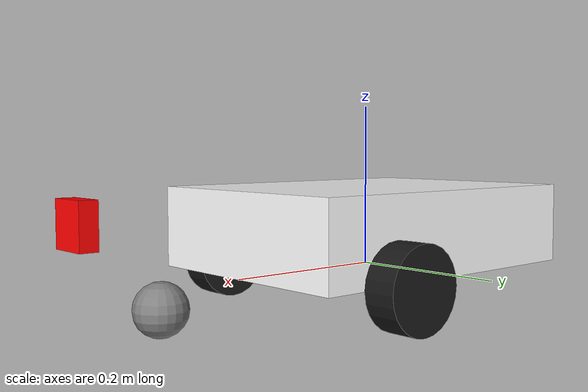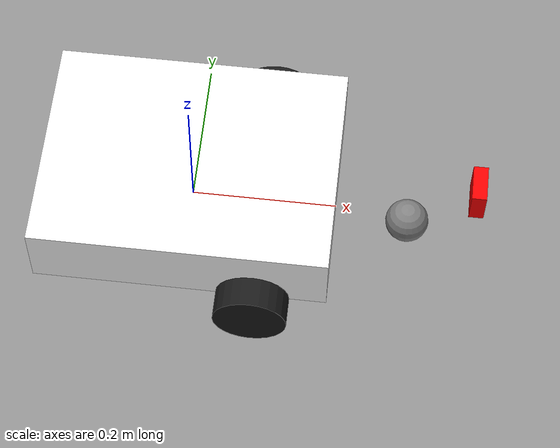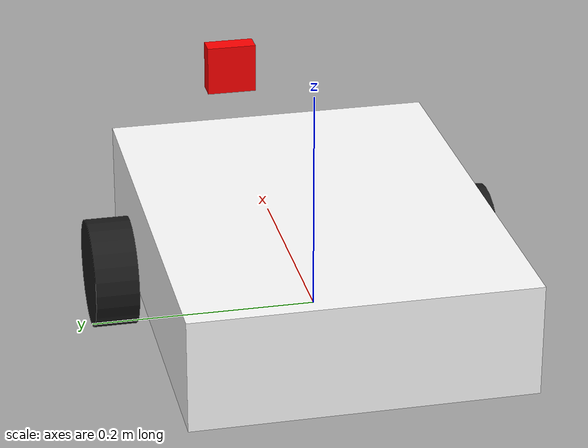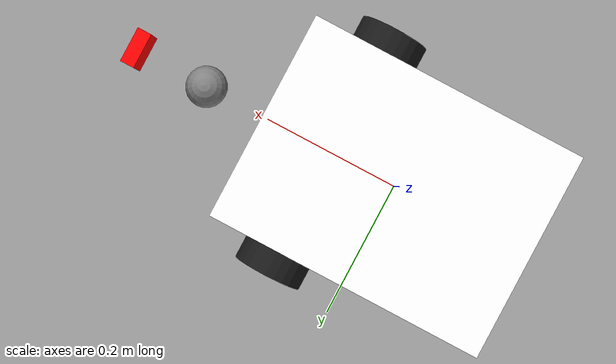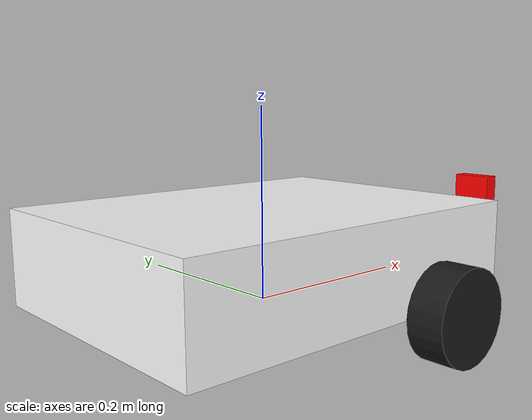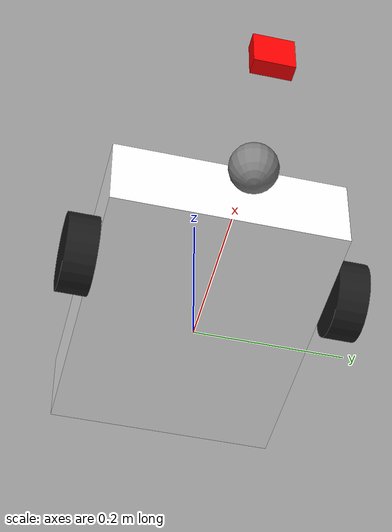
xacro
<?xml version="1.0"?>
<robot xmlns:xacro="http://www.ros.org/wiki/xacro" name="my_robot">

    <xacro:macro name="box_inertia" params="m w h d">
        <inertial>
            <mass value="${m}"/>
            <inertia ixx="${(m/12) * (h*h + d*d)}" ixy="0.0" ixz="0.0"
                     iyy="${(m/12) * (w*w + d*d)}" iyz="0.0"
                     izz="${(m/12) * (w*w + h*h)}"/>
        </inertial>
    </xacro:macro>

    <xacro:macro name="cylinder_inertia" params="m r h">
        <inertial>
            <mass value="${m}"/>
            <inertia ixx="${(m/12) * (3*r*r + h*h)}" ixy="0.0" ixz="0.0"
                     iyy="${(m/12) * (3*r*r + h*h)}" iyz="0.0"
                     izz="${(m/2) * (r*r)}"/>
        </inertial>
    </xacro:macro>

    <xacro:macro name="sphere_inertia" params="m r">
        <inertial>
            <mass value="${m}"/>
            <inertia ixx="${(2*m/5) * (r*r)}" ixy="0.0" ixz="0.0"
                     iyy="${(2*m/5) * (r*r)}" iyz="0.0"
                     izz="${(2*m/5) * (r*r)}"/>
        </inertial>
    </xacro:macro>

    <gazebo reference="base_link">
        <material>Gazebo/Pink</material>
    </gazebo>
    <gazebo reference="left_wheel_link">
        <material>Gazebo/Black</material>
    </gazebo>
    <gazebo reference="right_wheel_link">
        <material>Gazebo/Black</material>
    </gazebo>
    <gazebo reference="caster_link">
        <material>Gazebo/Green</material>
    </gazebo>
    <gazebo reference="camera_link">
        <material>Gazebo/Red</material>
    </gazebo>

    <link name="base_link">
        <visual>
            <geometry>
                <box size="0.4 0.3 0.1"/>
            </geometry>
            <origin xyz="0 0 0.05" rpy="0 0 0"/>
            <material name="white">
		<color rgba="1.0 1.0 1.0 1.0"/>
            </material>
        </visual>
        <collision>
            <geometry>
                <box size="0.4 0.3 0.1"/>
            </geometry>
            <origin xyz="0 0 0.05" rpy="0 0 0"/>
        </collision>
        <xacro:box_inertia m="5.0" w="0.4" h="0.3" d="0.1"/>
    </link>

    <link name="left_wheel_link">
        <visual>
            <geometry>
                <cylinder radius="0.05" length="0.04"/>
            </geometry>
            <origin xyz="0 0 0" rpy="1.5707 0 0"/>
            <material name="black">
                <color rgba="0.1 0.1 0.1 1.0"/>
            </material>
        </visual>
        <collision>
            <geometry>
                <cylinder radius="0.05" length="0.04"/>
            </geometry>
            <origin xyz="0 0 0" rpy="1.5707 0 0"/>
        </collision>
        <xacro:cylinder_inertia m="0.5" r="0.05" h="0.04"/>
    </link>

    <joint name="left_wheel_joint" type="continuous">
        <parent link="base_link"/>
        <child link="left_wheel_link"/>
        <origin xyz="0.1 0.17 0.0" rpy="0 0 0"/>
        <axis xyz="0 1 0"/>
    </joint>

    <link name="right_wheel_link">
        <visual>
            <geometry>
                <cylinder radius="0.05" length="0.04"/>
            </geometry>
            <origin xyz="0 0 0" rpy="1.5707 0 0"/>
            <material name="black">
                <color rgba="0.1 0.1 0.1 1.0"/>
            </material>
        </visual>
        <collision>
            <geometry>
                <cylinder radius="0.05" length="0.04"/>
            </geometry>
            <origin xyz="0 0 0" rpy="1.5707 0 0"/>
        </collision>
        <xacro:cylinder_inertia m="0.5" r="0.05" h="0.04"/>
    </link>

    <joint name="right_wheel_joint" type="continuous">
        <parent link="base_link"/>
        <child link="right_wheel_link"/>
        <origin xyz="0.1 -0.17 0.0" rpy="0 0 0"/>
        <axis xyz="0 1 0"/>
    </joint>

    <link name="caster_link">
        <visual>
            <geometry>
                <sphere radius="0.03"/>
            </geometry>
            <origin xyz="0 0 0" rpy="0 0 0"/>
            <material name="green">
                <color rgba="0.5 0.5 0.5 1.0"/>
            </material>
        </visual>
        <collision>
            <geometry>
                <sphere radius="0.03"/>
            </geometry>
            <origin xyz="0 0 0" rpy="0 0 0"/>
        </collision>
        <xacro:sphere_inertia m="0.2" r="0.03"/>
    </link>

    <joint name="caster_joint" type="fixed">
        <parent link="base_link"/>
        <child link="caster_link"/>
        <origin xyz="0.3 0 -0.02" rpy="0 0 0"/>
    </joint>

    <link name="camera_link">
        <visual>
            <geometry>
                <box size="0.02 0.05 0.05"/>
            </geometry>
            <material name="red">
                <color rgba="1.0 0.0 0.0 1.0"/>
            </material>
        </visual>
        <collision>
            <geometry>
                <box size="0.02 0.05 0.05"/>
            </geometry>
        </collision>
        <xacro:box_inertia m="0.1" w="0.02" h="0.05" d="0.05"/>
    </link>

    <joint name="camera_joint" type="fixed">
        <parent link="base_link"/>
        <child link="camera_link"/>
        <origin xyz="0.39 0 0.075" rpy="0 0 0"/>
    </joint>

    <gazebo>
        <plugin name="diff_drive_controller" filename="libgazebo_ros_diff_drive.so">
            <ros>
                <namespace>/</namespace>
                <remapping>/cmd_vel:=/cmd_vel</remapping>
                <remapping>/odom:=/odom</remapping>
            </ros>

            <update_rate>100.0</update_rate>
            <left_joint>left_wheel_joint</left_joint>
            <right_joint>right_wheel_joint</right_joint>

            <wheel_separation>0.34</wheel_separation>
            <wheel_diameter>0.10</wheel_diameter>

            <max_wheel_torque>200</max_wheel_torque>
            <max_wheel_acceleration>10.0</max_wheel_acceleration>

            <publish_odom>true</publish_odom>
            <publish_odom_tf>true</publish_odom_tf>
            <publish_wheel_tf>true</publish_wheel_tf>

            <odometry_frame>odom</odometry_frame>
            <robot_base_frame>base_link</robot_base_frame>
        </plugin>
    </gazebo>

    <gazebo reference="camera_link">
        <sensor type="camera" name="camera">
            <update_rate>30.0</update_rate>
            <camera name="head">
                <horizontal_fov>1.3962634</horizontal_fov>
                <image>
                    <width>800</width>
                    <height>800</height>
                    <format>R8G8B8</format>
                </image>
                <clip>
                    <near>0.02</near>
                    <far>300</far>
                </clip>
            </camera>
            <plugin name="camera_controller" filename="libgazebo_ros_camera.so">
                <ros>
                    <namespace>/</namespace>
                    <remapping>image_raw:=/camera/image_raw</remapping>
                    <remapping>camera_info:=/camera/camera_info</remapping>
                </ros>

                <frame_name>camera_link</frame_name>
                <hack_baseline>0.07</hack_baseline>
            </plugin>
        </sensor>
    </gazebo>

</robot>
